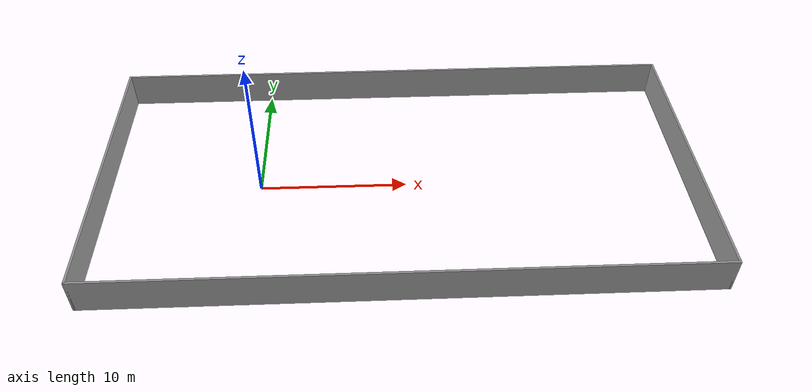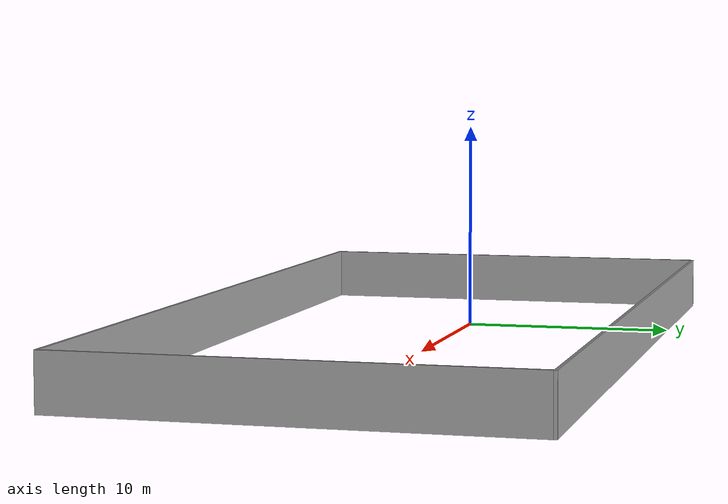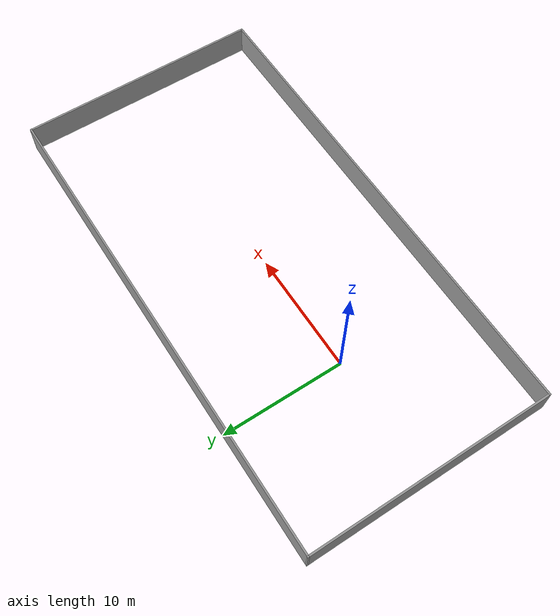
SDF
<?xml version='1.0'?>
<sdf version='1.6'>
  <model name='empty_world'>
    <pose frame=''>9.517 -0.044 0 0 -0 0</pose>
    <link name='Wall_0'>
      <collision name='Wall_0_Collision'>
        <geometry>
          <box>
            <size>40.04 0.15 2.5</size>
          </box>
        </geometry>
        <pose frame=''>0 0 1.25 0 -0 0</pose>
      </collision>
      <visual name='Wall_0_Visual'>
        <pose frame=''>0 0 1.25 0 -0 0</pose>
        <geometry>
          <box>
            <size>40.04 0.15 2.5</size>
          </box>
        </geometry>
        <material>
          <script>
            <uri>file://media/materials/scripts/gazebo.material</uri>
            <name>Gazebo/Grey</name>
          </script>
          <ambient>1 1 1 1</ambient>
        </material>
      </visual>
      <pose frame=''>0 -10 0 0 -0 0</pose>
    </link>
    <link name='Wall_13'>
      <collision name='Wall_13_Collision'>
        <geometry>
          <box>
            <size>20.15 0.15 2.5</size>
          </box>
        </geometry>
        <pose frame=''>0 0 1.25 0 -0 0</pose>
      </collision>
      <visual name='Wall_13_Visual'>
        <pose frame=''>0 0 1.25 0 -0 0</pose>
        <geometry>
          <box>
            <size>20.15 0.15 2.5</size>
          </box>
        </geometry>
        <material>
          <script>
            <uri>file://media/materials/scripts/gazebo.material</uri>
            <name>Gazebo/Grey</name>
          </script>
          <ambient>1 1 1 1</ambient>
        </material>
      </visual>
      <pose frame=''>19.945 0 0 0 -0 1.5708</pose>
    </link>
    <link name='Wall_2'>
      <collision name='Wall_2_Collision'>
        <geometry>
          <box>
            <size>20.15 0.15 2.5</size>
          </box>
        </geometry>
        <pose frame=''>0 0 1.25 0 -0 0</pose>
      </collision>
      <visual name='Wall_2_Visual'>
        <pose frame=''>0 0 1.25 0 -0 0</pose>
        <geometry>
          <box>
            <size>20.15 0.15 2.5</size>
          </box>
        </geometry>
        <material>
          <script>
            <uri>file://media/materials/scripts/gazebo.material</uri>
            <name>Gazebo/Grey</name>
          </script>
          <ambient>1 1 1 1</ambient>
        </material>
      </visual>
      <pose frame=''>-19.945 0 0 0 0 -1.5708</pose>
    </link>
    <link name='Wall_4'>
      <collision name='Wall_4_Collision'>
        <geometry>
          <box>
            <size>40.0405 0.15 2.5</size>
          </box>
        </geometry>
        <pose frame=''>0 0 1.25 0 -0 0</pose>
      </collision>
      <visual name='Wall_4_Visual'>
        <pose frame=''>0 0 1.25 0 -0 0</pose>
        <geometry>
          <box>
            <size>40.0405 0.15 2.5</size>
          </box>
        </geometry>
        <material>
          <script>
            <uri>file://media/materials/scripts/gazebo.material</uri>
            <name>Gazebo/Grey</name>
          </script>
          <ambient>1 1 1 1</ambient>
        </material>
      </visual>
      <pose frame=''>0 10 0 0 -0 0</pose>
    </link>
    <static>1</static>
  </model>
</sdf>
